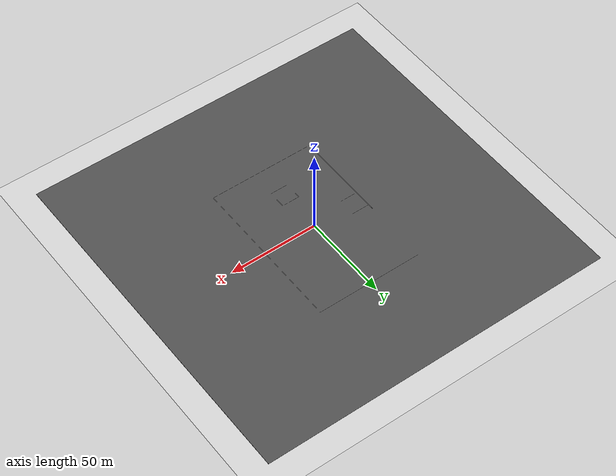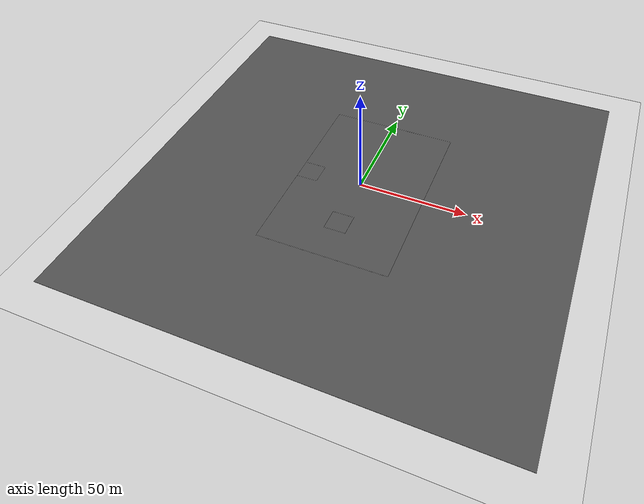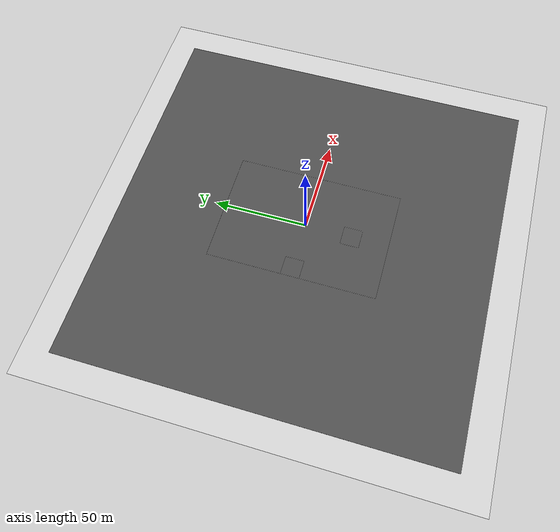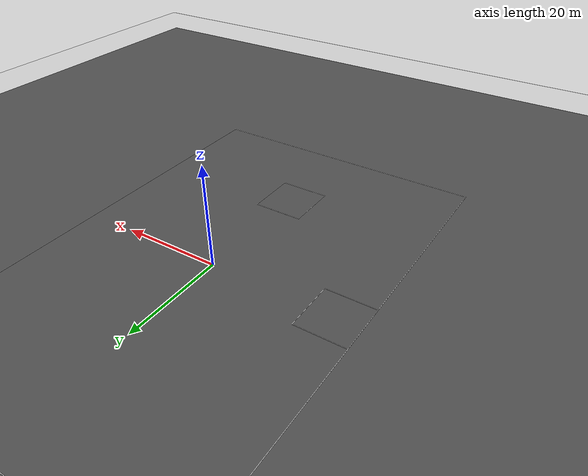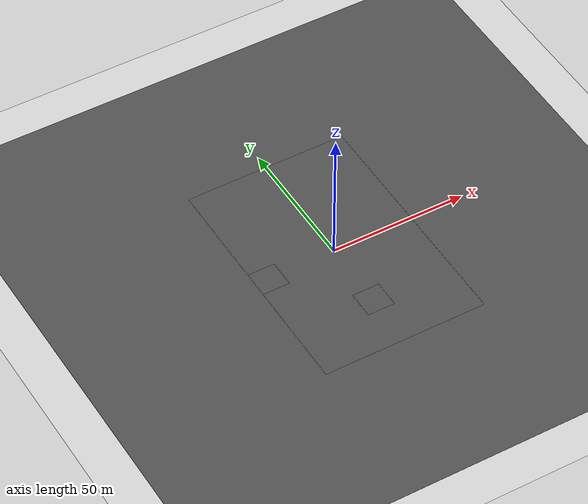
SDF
<sdf version="1.6">
 <world name="default">
  <light name="sun" type="directional">
   <pose>0 0 10 0 0 0</pose>
   <diffuse>0.8 0.8 0.8 1</diffuse>
   <specular>0.1 0.1 0.1 1</specular>
   <attenuation>
    <range>1000</range>
    <constant>0.9</constant>
    <linear>0.01</linear>
    <quadratic>0.001</quadratic>
   </attenuation>
   <direction>-0.5 0.5 -1</direction>
  </light>
  <model name="ground_plane">
   <static>1</static>
   <link name="link">
    <collision name="collision">
     <geometry><plane><normal>0 0 1</normal><size>200.0 200.0</size></plane></geometry>
     <surface><friction><ode><mu>100</mu><mu2>50</mu2></ode></friction></surface>
    </collision>
    <visual name="visual">
     <cast_shadows>0</cast_shadows>
     <geometry><plane><normal>0 0 1</normal><size>200.0 200.0</size></plane></geometry>
     <material>
      <script><uri>file://media/materials/scripts/gazebo.material</uri><name>Gazebo/Grey</name></script>
     </material>
    </visual>
   </link>
  </model>
  <model name="asphalt">
   <static>1</static>
   <link name="link">
    <collision name="collision"><geometry><box><size>200.0 200.0 0.1</size></box></geometry></collision>
    <visual name="visual">
     <cast_shadows>0</cast_shadows>
     <geometry><box><size>200.0 200.0 0.1</size></box></geometry>
     <material>
      <script>
       <uri>file://worlds/materials/scripts</uri>
       <uri>file://worlds/materials/textures</uri>
       <name>MbzircGazebo/Asphalt</name>
      </script>
     </material>
    </visual>
   </link>
  </model>
  <physics name="default_physics" default="0" type="ode">
   <ode>
    <solver>
     <type>quick</type>
     <iters>10</iters>
     <sor>1.3</sor>
     <use_dynamic_moi_rescaling>0</use_dynamic_moi_rescaling>
    </solver>
    <constraints>
     <cfm>0</cfm>
     <erp>0.2</erp>
     <contact_max_correcting_vel>100</contact_max_correcting_vel>
     <contact_surface_layer>0.001</contact_surface_layer>
    </constraints>
   </ode>
   <max_step_size>0.002</max_step_size>
   <real_time_factor>1</real_time_factor>
   <real_time_update_rate>500</real_time_update_rate>
  </physics>
  <gravity>0 0 -9.8066</gravity>
  <magnetic_field>6e-06 2.3e-05 -4.2e-05</magnetic_field>
  <atmosphere type="adiabatic"/>
  <scene><ambient>0.4 0.4 0.4 1</ambient><background>0.7 0.7 0.7 1</background><shadows>1</shadows></scene>
  <spherical_coordinates>
   <surface_model>EARTH_WGS84</surface_model>
   <latitude_deg>0</latitude_deg>
   <longitude_deg>0</longitude_deg>
   <elevation>0</elevation>
   <heading_deg>0</heading_deg>
  </spherical_coordinates>
  <include name="landing_zone">
   <name>landing_zone</name>
   <pose>-25.0 0 0.05 0 0 0</pose>
   <uri>file://models/designation_area</uri>
   <static>1</static>
  </include>
  <include name="drop_zone">
   <name>drop_zone</name>
   <pose>0 -25.0 0.05 0 0 0</pose>
   <uri>file://models/designation_area</uri>
   <static>1</static>
  </include>
  <include name="arena_area">
   <pose>0 0 0.05 0 0 0</pose>
   <uri>file://models/arena_area</uri>
   <static>1</static>
  </include>
 </world>
</sdf>

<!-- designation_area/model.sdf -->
<sdf version='1.6'>
  <model name='designation_area'>
    <link name='link_0'>
      <pose frame=''>0 5 0 0 0 0</pose>
      <inertial>
        <mass>1</mass>
        <inertia>
          <ixx>0.166667</ixx>
          <ixy>0</ixy>
          <ixz>0</ixz>
          <iyy>0.166667</iyy>
          <iyz>0</iyz>
          <izz>0.166667</izz>
        </inertia>
        <pose frame=''>0 0 0 0 0 0</pose>
      </inertial>
      <gravity>1</gravity>
      <self_collide>0</self_collide>
      <kinematic>0</kinematic>
      <visual name='visual'>
        <pose frame=''>0 0 0 0 0 0</pose>
        <geometry>
          <box>
            <size>10.1 0.1 0.01</size>
          </box>
        </geometry>
        <material>
          <script>
            <uri>file://worlds/materials/scripts</uri>
            <uri>file://worlds/materials/textures</uri>
            <name>MbzircGazebo/WhiteTexture</name>
          </script>
        </material>
        <transparency>0</transparency>
        <cast_shadows>1</cast_shadows>
      </visual>
      <collision name='collision'>
        <laser_retro>0</laser_retro>
        <max_contacts>10</max_contacts>
        <pose frame=''>0 0 0 0 0 0</pose>
        <geometry>
          <box>
            <size>10.1 0.1 0.01</size>
          </box>
        </geometry>
        <surface>
          <friction>
            <ode>
              <mu>1</mu>
              <mu2>1</mu2>
              <fdir1>0 0 0</fdir1>
              <slip1>0</slip1>
              <slip2>0</slip2>
            </ode>
            <torsional>
              <coefficient>1</coefficient>
              <patch_radius>0</patch_radius>
              <surface_radius>0</surface_radius>
              <use_patch_radius>1</use_patch_radius>
              <ode>
                <slip>0</slip>
              </ode>
            </torsional>
          </friction>
          <bounce>
            <restitution_coefficient>0</restitution_coefficient>
            <threshold>1e+06</threshold>
          </bounce>
          <contact>
            <collide_without_contact>0</collide_without_contact>
            <collide_without_contact_bitmask>1</collide_without_contact_bitmask>
            <collide_bitmask>1</collide_bitmask>
            <ode>
              <soft_cfm>0</soft_cfm>
              <soft_erp>0.2</soft_erp>
              <kp>1e+13</kp>
              <kd>1</kd>
              <max_vel>0.01</max_vel>
              <min_depth>0</min_depth>
            </ode>
            <bullet>
              <split_impulse>1</split_impulse>
              <split_impulse_penetration_threshold>-0.01</split_impulse_penetration_threshold>
              <soft_cfm>0</soft_cfm>
              <soft_erp>0.2</soft_erp>
              <kp>1e+13</kp>
              <kd>1</kd>
            </bullet>
          </contact>
        </surface>
      </collision>
    </link>
    <link name='link_1'>
      <pose frame=''>5 0 0 0 0 0</pose>
      <inertial>
        <mass>1</mass>
        <inertia>
          <ixx>0.166667</ixx>
          <ixy>0</ixy>
          <ixz>0</ixz>
          <iyy>0.166667</iyy>
          <iyz>0</iyz>
          <izz>0.166667</izz>
        </inertia>
        <pose frame=''>0 0 0 0 0 0</pose>
      </inertial>
      <gravity>1</gravity>
      <self_collide>0</self_collide>
      <kinematic>0</kinematic>
      <visual name='visual'>
        <pose frame=''>0 0 0 0 0 0</pose>
        <geometry>
          <box>
            <size>0.1 10.1 0.01</size>
          </box>
        </geometry>
        <material>
          <script>
            <uri>file://worlds/materials/scripts</uri>
            <uri>file://worlds/materials/textures</uri>
            <name>MbzircGazebo/WhiteTexture</name>
          </script>
        </material>
        <transparency>0</transparency>
        <cast_shadows>1</cast_shadows>
      </visual>
      <collision name='collision'>
        <laser_retro>0</laser_retro>
        <max_contacts>10</max_contacts>
        <pose frame=''>0 0 0 0 0 0</pose>
        <geometry>
          <box>
            <size>0.1 10.1 0.01</size>
          </box>
        </geometry>
        <surface>
          <friction>
            <ode>
              <mu>1</mu>
              <mu2>1</mu2>
              <fdir1>0 0 0</fdir1>
              <slip1>0</slip1>
              <slip2>0</slip2>
            </ode>
            <torsional>
              <coefficient>1</coefficient>
              <patch_radius>0</patch_radius>
              <surface_radius>0</surface_radius>
              <use_patch_radius>1</use_patch_radius>
              <ode>
                <slip>0</slip>
              </ode>
            </torsional>
          </friction>
          <bounce>
            <restitution_coefficient>0</restitution_coefficient>
            <threshold>1e+06</threshold>
          </bounce>
          <contact>
            <collide_without_contact>0</collide_without_contact>
            <collide_without_contact_bitmask>1</collide_without_contact_bitmask>
            <collide_bitmask>1</collide_bitmask>
            <ode>
              <soft_cfm>0</soft_cfm>
              <soft_erp>0.2</soft_erp>
              <kp>1e+13</kp>
              <kd>1</kd>
              <max_vel>0.01</max_vel>
              <min_depth>0</min_depth>
            </ode>
            <bullet>
              <split_impulse>1</split_impulse>
              <split_impulse_penetration_threshold>-0.01</split_impulse_penetration_threshold>
              <soft_cfm>0</soft_cfm>
              <soft_erp>0.2</soft_erp>
              <kp>1e+13</kp>
              <kd>1</kd>
            </bullet>
          </contact>
        </surface>
      </collision>
    </link>
    <link name='link_2'>
      <pose frame=''>0 -5 0 0 0 0</pose>
      <inertial>
        <mass>1</mass>
        <inertia>
          <ixx>0.166667</ixx>
          <ixy>0</ixy>
          <ixz>0</ixz>
          <iyy>0.166667</iyy>
          <iyz>0</iyz>
          <izz>0.166667</izz>
        </inertia>
        <pose frame=''>0 0 0 0 0 0</pose>
      </inertial>
      <gravity>1</gravity>
      <self_collide>0</self_collide>
      <kinematic>0</kinematic>
      <visual name='visual'>
        <pose frame=''>0 0 0 0 0 0</pose>
        <geometry>
          <box>
            <size>10.1 0.1 0.01</size>
          </box>
        </geometry>
        <material>
          <script>
            <uri>file://worlds/materials/scripts</uri>
            <uri>file://worlds/materials/textures</uri>
            <name>MbzircGazebo/WhiteTexture</name>
          </script>
        </material>
        <transparency>0</transparency>
        <cast_shadows>1</cast_shadows>
      </visual>
      <collision name='collision'>
        <laser_retro>0</laser_retro>
        <max_contacts>10</max_contacts>
        <pose frame=''>0 0 0 0 0 0</pose>
        <geometry>
          <box>
            <size>10.1 0.1 0.01</size>
          </box>
        </geometry>
        <surface>
          <friction>
            <ode>
              <mu>1</mu>
              <mu2>1</mu2>
              <fdir1>0 0 0</fdir1>
              <slip1>0</slip1>
              <slip2>0</slip2>
            </ode>
            <torsional>
              <coefficient>1</coefficient>
              <patch_radius>0</patch_radius>
              <surface_radius>0</surface_radius>
              <use_patch_radius>1</use_patch_radius>
              <ode>
                <slip>0</slip>
              </ode>
            </torsional>
          </friction>
          <bounce>
            <restitution_coefficient>0</restitution_coefficient>
            <threshold>1e+06</threshold>
          </bounce>
          <contact>
            <collide_without_contact>0</collide_without_contact>
            <collide_without_contact_bitmask>1</collide_without_contact_bitmask>
            <collide_bitmask>1</collide_bitmask>
            <ode>
              <soft_cfm>0</soft_cfm>
              <soft_erp>0.2</soft_erp>
              <kp>1e+13</kp>
              <kd>1</kd>
              <max_vel>0.01</max_vel>
              <min_depth>0</min_depth>
            </ode>
            <bullet>
              <split_impulse>1</split_impulse>
              <split_impulse_penetration_threshold>-0.01</split_impulse_penetration_threshold>
              <soft_cfm>0</soft_cfm>
              <soft_erp>0.2</soft_erp>
              <kp>1e+13</kp>
              <kd>1</kd>
            </bullet>
          </contact>
        </surface>
      </collision>
    </link>
    <link name='link_3'>
      <pose frame=''>-5 0 0 0 0 0</pose>
      <inertial>
        <mass>1</mass>
        <inertia>
          <ixx>0.166667</ixx>
          <ixy>0</ixy>
          <ixz>0</ixz>
          <iyy>0.166667</iyy>
          <iyz>0</iyz>
          <izz>0.166667</izz>
        </inertia>
        <pose frame=''>0 0 0 0 0 0</pose>
      </inertial>
      <gravity>1</gravity>
      <self_collide>0</self_collide>
      <kinematic>0</kinematic>
      <visual name='visual'>
        <pose frame=''>0 0 0 0 0 0</pose>
        <geometry>
          <box>
            <size>0.1 10.1 0.01</size>
          </box>
        </geometry>
        <material>
          <script>
            <uri>file://worlds/materials/scripts</uri>
            <uri>file://worlds/materials/textures</uri>
            <name>MbzircGazebo/WhiteTexture</name>
          </script>
        </material>
        <transparency>0</transparency>
        <cast_shadows>1</cast_shadows>
      </visual>
      <collision name='collision'>
        <laser_retro>0</laser_retro>
        <max_contacts>10</max_contacts>
        <pose frame=''>0 0 0 0 0 0</pose>
        <geometry>
          <box>
            <size>0.1 10.1 0.01</size>
          </box>
        </geometry>
        <surface>
          <friction>
            <ode>
              <mu>1</mu>
              <mu2>1</mu2>
              <fdir1>0 0 0</fdir1>
              <slip1>0</slip1>
              <slip2>0</slip2>
            </ode>
            <torsional>
              <coefficient>1</coefficient>
              <patch_radius>0</patch_radius>
              <surface_radius>0</surface_radius>
              <use_patch_radius>1</use_patch_radius>
              <ode>
                <slip>0</slip>
              </ode>
            </torsional>
          </friction>
          <bounce>
            <restitution_coefficient>0</restitution_coefficient>
            <threshold>1e+06</threshold>
          </bounce>
          <contact>
            <collide_without_contact>0</collide_without_contact>
            <collide_without_contact_bitmask>1</collide_without_contact_bitmask>
            <collide_bitmask>1</collide_bitmask>
            <ode>
              <soft_cfm>0</soft_cfm>
              <soft_erp>0.2</soft_erp>
              <kp>1e+13</kp>
              <kd>1</kd>
              <max_vel>0.01</max_vel>
              <min_depth>0</min_depth>
            </ode>
            <bullet>
              <split_impulse>1</split_impulse>
              <split_impulse_penetration_threshold>-0.01</split_impulse_penetration_threshold>
              <soft_cfm>0</soft_cfm>
              <soft_erp>0.2</soft_erp>
              <kp>1e+13</kp>
              <kd>1</kd>
            </bullet>
          </contact>
        </surface>
      </collision>
    </link>
    <static>1</static>
    <allow_auto_disable>1</allow_auto_disable>
  </model>
</sdf>

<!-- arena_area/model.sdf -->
<sdf version='1.6'>
  <model name='designation_area'>
    <link name='link_0'>
      <pose frame=''>0 45 0 0 0 0</pose>
      <inertial>
        <mass>1</mass>
        <inertia>
          <ixx>0.166667</ixx>
          <ixy>0</ixy>
          <ixz>0</ixz>
          <iyy>0.166667</iyy>
          <iyz>0</iyz>
          <izz>0.166667</izz>
        </inertia>
        <pose frame=''>0 0 0 0 0 0</pose>
      </inertial>
      <gravity>1</gravity>
      <self_collide>0</self_collide>
      <kinematic>0</kinematic>
      <visual name='visual'>
        <pose frame=''>0 0 0 0 0 0</pose>
        <geometry>
          <box>
            <size>60.1 0.1 0.01</size>
          </box>
        </geometry>
        <material>
          <script>
            <uri>file://worlds/materials/scripts</uri>
            <uri>file://worlds/materials/textures</uri>
            <name>MbzircGazebo/WhiteTexture</name>
          </script>
        </material>
        <transparency>0</transparency>
        <cast_shadows>1</cast_shadows>
      </visual>
      <collision name='collision'>
        <laser_retro>0</laser_retro>
        <max_contacts>10</max_contacts>
        <pose frame=''>0 0 0 0 0 0</pose>
        <geometry>
          <box>
            <size>60.1 0.1 0.01</size>
          </box>
        </geometry>
        <surface>
          <friction>
            <ode>
              <mu>1</mu>
              <mu2>1</mu2>
              <fdir1>0 0 0</fdir1>
              <slip1>0</slip1>
              <slip2>0</slip2>
            </ode>
            <torsional>
              <coefficient>1</coefficient>
              <patch_radius>0</patch_radius>
              <surface_radius>0</surface_radius>
              <use_patch_radius>1</use_patch_radius>
              <ode>
                <slip>0</slip>
              </ode>
            </torsional>
          </friction>
          <bounce>
            <restitution_coefficient>0</restitution_coefficient>
            <threshold>1e+06</threshold>
          </bounce>
          <contact>
            <collide_without_contact>0</collide_without_contact>
            <collide_without_contact_bitmask>1</collide_without_contact_bitmask>
            <collide_bitmask>1</collide_bitmask>
            <ode>
              <soft_cfm>0</soft_cfm>
              <soft_erp>0.2</soft_erp>
              <kp>1e+13</kp>
              <kd>1</kd>
              <max_vel>0.01</max_vel>
              <min_depth>0</min_depth>
            </ode>
            <bullet>
              <split_impulse>1</split_impulse>
              <split_impulse_penetration_threshold>-0.01</split_impulse_penetration_threshold>
              <soft_cfm>0</soft_cfm>
              <soft_erp>0.2</soft_erp>
              <kp>1e+13</kp>
              <kd>1</kd>
            </bullet>
          </contact>
        </surface>
      </collision>
    </link>
    <link name='link_1'>
      <pose frame=''>30 0 0 0 0 0</pose>
      <inertial>
        <mass>1</mass>
        <inertia>
          <ixx>0.166667</ixx>
          <ixy>0</ixy>
          <ixz>0</ixz>
          <iyy>0.166667</iyy>
          <iyz>0</iyz>
          <izz>0.166667</izz>
        </inertia>
        <pose frame=''>0 0 0 0 0 0</pose>
      </inertial>
      <gravity>1</gravity>
      <self_collide>0</self_collide>
      <kinematic>0</kinematic>
      <visual name='visual'>
        <pose frame=''>0 0 0 0 0 0</pose>
        <geometry>
          <box>
            <size>0.1 90.1 0.01</size>
          </box>
        </geometry>
        <material>
          <script>
            <uri>file://worlds/materials/scripts</uri>
            <uri>file://worlds/materials/textures</uri>
            <name>MbzircGazebo/WhiteTexture</name>
          </script>
        </material>
        <transparency>0</transparency>
        <cast_shadows>1</cast_shadows>
      </visual>
      <collision name='collision'>
        <laser_retro>0</laser_retro>
        <max_contacts>10</max_contacts>
        <pose frame=''>0 0 0 0 0 0</pose>
        <geometry>
          <box>
            <size>0.1 90.1 0.01</size>
          </box>
        </geometry>
        <surface>
          <friction>
            <ode>
              <mu>1</mu>
              <mu2>1</mu2>
              <fdir1>0 0 0</fdir1>
              <slip1>0</slip1>
              <slip2>0</slip2>
            </ode>
            <torsional>
              <coefficient>1</coefficient>
              <patch_radius>0</patch_radius>
              <surface_radius>0</surface_radius>
              <use_patch_radius>1</use_patch_radius>
              <ode>
                <slip>0</slip>
              </ode>
            </torsional>
          </friction>
          <bounce>
            <restitution_coefficient>0</restitution_coefficient>
            <threshold>1e+06</threshold>
          </bounce>
          <contact>
            <collide_without_contact>0</collide_without_contact>
            <collide_without_contact_bitmask>1</collide_without_contact_bitmask>
            <collide_bitmask>1</collide_bitmask>
            <ode>
              <soft_cfm>0</soft_cfm>
              <soft_erp>0.2</soft_erp>
              <kp>1e+13</kp>
              <kd>1</kd>
              <max_vel>0.01</max_vel>
              <min_depth>0</min_depth>
            </ode>
            <bullet>
              <split_impulse>1</split_impulse>
              <split_impulse_penetration_threshold>-0.01</split_impulse_penetration_threshold>
              <soft_cfm>0</soft_cfm>
              <soft_erp>0.2</soft_erp>
              <kp>1e+13</kp>
              <kd>1</kd>
            </bullet>
          </contact>
        </surface>
      </collision>
    </link>
    <link name='link_2'>
      <pose frame=''>0 -45 0 0 0 0</pose>
      <inertial>
        <mass>1</mass>
        <inertia>
          <ixx>0.166667</ixx>
          <ixy>0</ixy>
          <ixz>0</ixz>
          <iyy>0.166667</iyy>
          <iyz>0</iyz>
          <izz>0.166667</izz>
        </inertia>
        <pose frame=''>0 0 0 0 0 0</pose>
      </inertial>
      <gravity>1</gravity>
      <self_collide>0</self_collide>
      <kinematic>0</kinematic>
      <visual name='visual'>
        <pose frame=''>0 0 0 0 0 0</pose>
        <geometry>
          <box>
            <size>60.1 0.1 0.01</size>
          </box>
        </geometry>
        <material>
          <script>
            <uri>file://worlds/materials/scripts</uri>
            <uri>file://worlds/materials/textures</uri>
            <name>MbzircGazebo/WhiteTexture</name>
          </script>
        </material>
        <transparency>0</transparency>
        <cast_shadows>1</cast_shadows>
      </visual>
      <collision name='collision'>
        <laser_retro>0</laser_retro>
        <max_contacts>10</max_contacts>
        <pose frame=''>0 0 0 0 0 0</pose>
        <geometry>
          <box>
            <size>60.1 0.1 0.01</size>
          </box>
        </geometry>
        <surface>
          <friction>
            <ode>
              <mu>1</mu>
              <mu2>1</mu2>
              <fdir1>0 0 0</fdir1>
              <slip1>0</slip1>
              <slip2>0</slip2>
            </ode>
            <torsional>
              <coefficient>1</coefficient>
              <patch_radius>0</patch_radius>
              <surface_radius>0</surface_radius>
              <use_patch_radius>1</use_patch_radius>
              <ode>
                <slip>0</slip>
              </ode>
            </torsional>
          </friction>
          <bounce>
            <restitution_coefficient>0</restitution_coefficient>
            <threshold>1e+06</threshold>
          </bounce>
          <contact>
            <collide_without_contact>0</collide_without_contact>
            <collide_without_contact_bitmask>1</collide_without_contact_bitmask>
            <collide_bitmask>1</collide_bitmask>
            <ode>
              <soft_cfm>0</soft_cfm>
              <soft_erp>0.2</soft_erp>
              <kp>1e+13</kp>
              <kd>1</kd>
              <max_vel>0.01</max_vel>
              <min_depth>0</min_depth>
            </ode>
            <bullet>
              <split_impulse>1</split_impulse>
              <split_impulse_penetration_threshold>-0.01</split_impulse_penetration_threshold>
              <soft_cfm>0</soft_cfm>
              <soft_erp>0.2</soft_erp>
              <kp>1e+13</kp>
              <kd>1</kd>
            </bullet>
          </contact>
        </surface>
      </collision>
    </link>
    <link name='link_3'>
      <pose frame=''>-30 0 0 0 0 0</pose>
      <inertial>
        <mass>1</mass>
        <inertia>
          <ixx>0.166667</ixx>
          <ixy>0</ixy>
          <ixz>0</ixz>
          <iyy>0.166667</iyy>
          <iyz>0</iyz>
          <izz>0.166667</izz>
        </inertia>
        <pose frame=''>0 0 0 0 0 0</pose>
      </inertial>
      <gravity>1</gravity>
      <self_collide>0</self_collide>
      <kinematic>0</kinematic>
      <visual name='visual'>
        <pose frame=''>0 0 0 0 0 0</pose>
        <geometry>
          <box>
            <size>0.1 90.1 0.01</size>
          </box>
        </geometry>
        <material>
          <script>
            <uri>file://worlds/materials/scripts</uri>
            <uri>file://worlds/materials/textures</uri>
            <name>MbzircGazebo/WhiteTexture</name>
          </script>
        </material>
        <transparency>0</transparency>
        <cast_shadows>1</cast_shadows>
      </visual>
      <collision name='collision'>
        <laser_retro>0</laser_retro>
        <max_contacts>10</max_contacts>
        <pose frame=''>0 0 0 0 0 0</pose>
        <geometry>
          <box>
            <size>0.1 90.1 0.01</size>
          </box>
        </geometry>
        <surface>
          <friction>
            <ode>
              <mu>1</mu>
              <mu2>1</mu2>
              <fdir1>0 0 0</fdir1>
              <slip1>0</slip1>
              <slip2>0</slip2>
            </ode>
            <torsional>
              <coefficient>1</coefficient>
              <patch_radius>0</patch_radius>
              <surface_radius>0</surface_radius>
              <use_patch_radius>1</use_patch_radius>
              <ode>
                <slip>0</slip>
              </ode>
            </torsional>
          </friction>
          <bounce>
            <restitution_coefficient>0</restitution_coefficient>
            <threshold>1e+06</threshold>
          </bounce>
          <contact>
            <collide_without_contact>0</collide_without_contact>
            <collide_without_contact_bitmask>1</collide_without_contact_bitmask>
            <collide_bitmask>1</collide_bitmask>
            <ode>
              <soft_cfm>0</soft_cfm>
              <soft_erp>0.2</soft_erp>
              <kp>1e+13</kp>
              <kd>1</kd>
              <max_vel>0.01</max_vel>
              <min_depth>0</min_depth>
            </ode>
            <bullet>
              <split_impulse>1</split_impulse>
              <split_impulse_penetration_threshold>-0.01</split_impulse_penetration_threshold>
              <soft_cfm>0</soft_cfm>
              <soft_erp>0.2</soft_erp>
              <kp>1e+13</kp>
              <kd>1</kd>
            </bullet>
          </contact>
        </surface>
      </collision>
    </link>
    <static>1</static>
    <allow_auto_disable>1</allow_auto_disable>
  </model>
</sdf>
